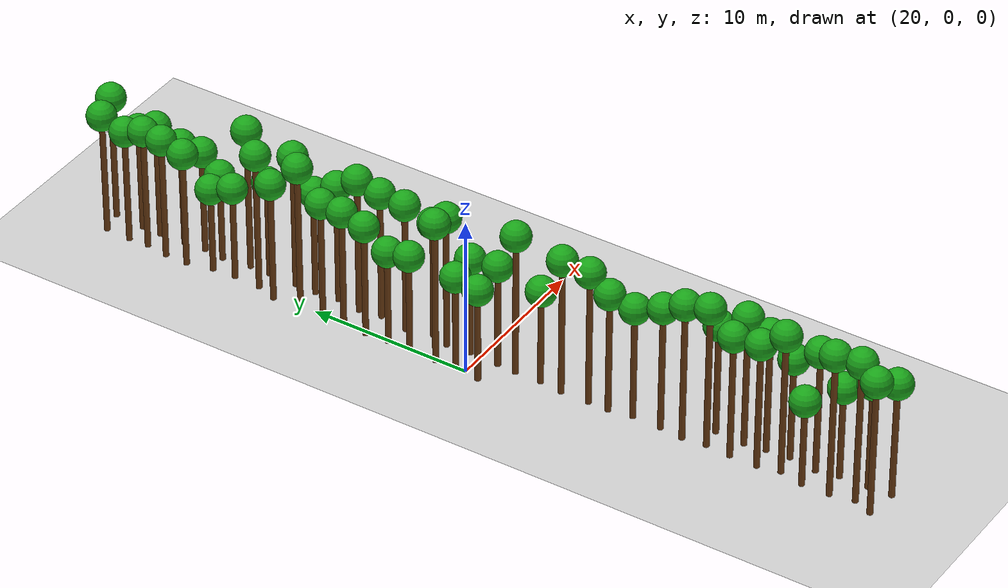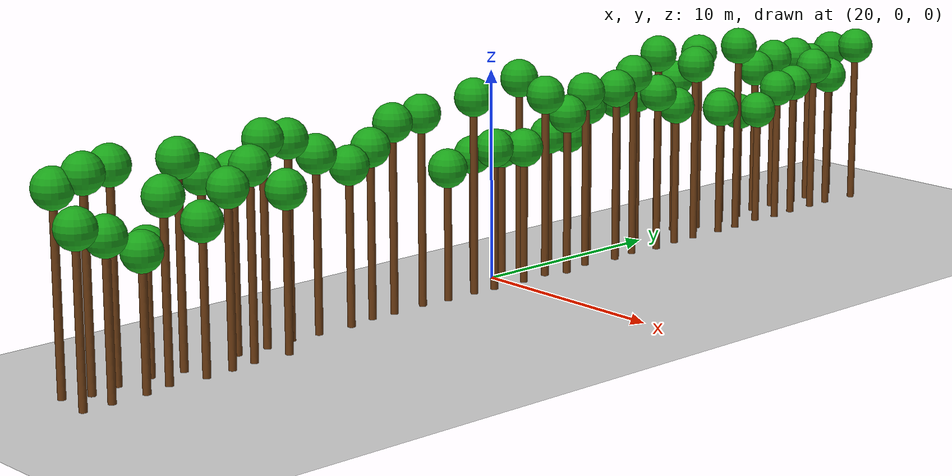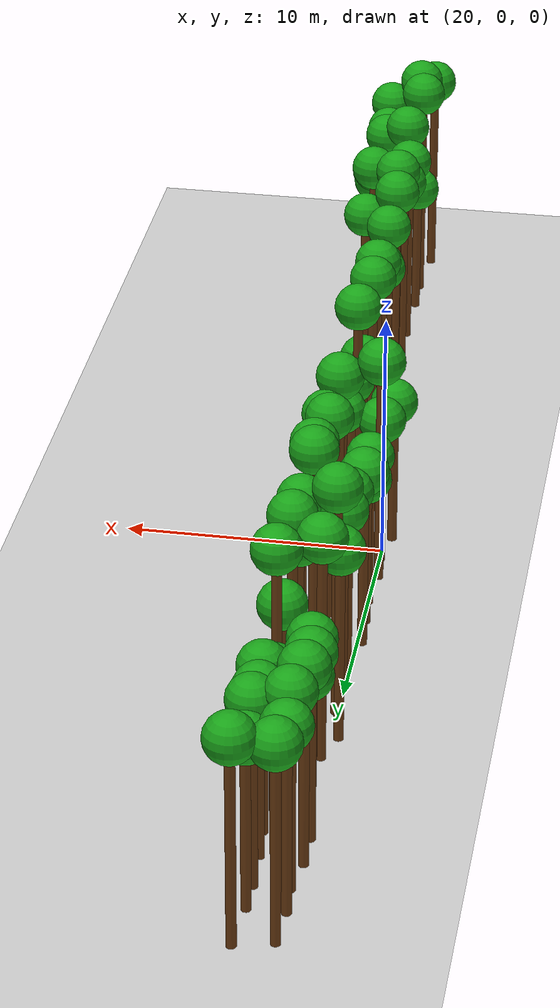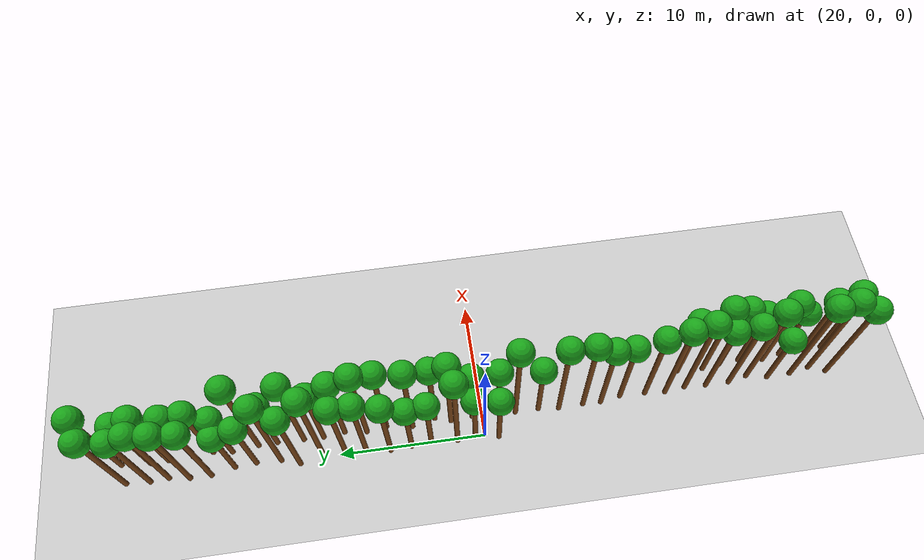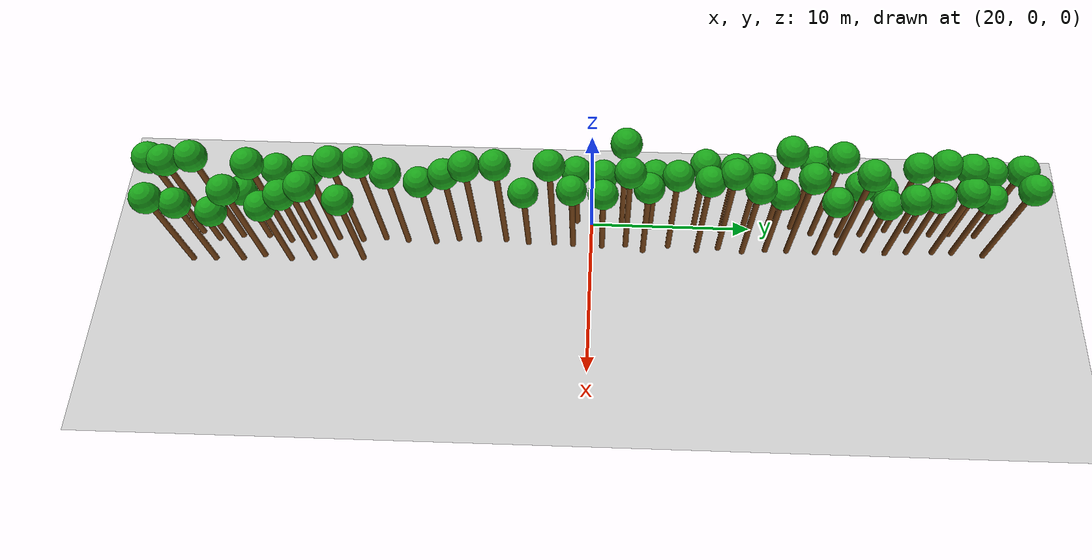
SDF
<sdf version="1.6">
 <world name="forest_world">
  <include><uri>model://sun</uri></include>
  <include><uri>model://ground_plane</uri></include>
  <model name="tree_1023">
   <static>true</static>
   <link name="trunk">
    <collision name="collision">
     <pose>19.75 -0.95 2.82 0 0 0</pose>
     <geometry><cylinder><radius>0.18</radius><length>5.64</length></cylinder></geometry>
    </collision>
    <visual name="trunk_visual">
     <pose>19.75 -0.95 2.82 0 0 0</pose>
     <geometry><cylinder><radius>0.18</radius><length>5.64</length></cylinder></geometry>
     <material><ambient>0.35 0.20 0.05 1</ambient><diffuse>0.45 0.25 0.08 1</diffuse></material>
    </visual>
    <visual name="leaf_visual">
     <pose>19.75 -0.95 6.09 0 0 0</pose>
     <geometry><sphere><radius>0.9</radius></sphere></geometry>
     <material><ambient>0.05 0.45 0.05 1</ambient><diffuse>0.10 0.65 0.10 1</diffuse></material>
    </visual>
   </link>
  </model>
  <model name="tree_1024">
   <static>true</static>
   <link name="trunk">
    <collision name="collision">
     <pose>19.99 0.66 2.86 0 0 0</pose>
     <geometry><cylinder><radius>0.18</radius><length>5.72</length></cylinder></geometry>
    </collision>
    <visual name="trunk_visual">
     <pose>19.99 0.66 2.86 0 0 0</pose>
     <geometry><cylinder><radius>0.18</radius><length>5.72</length></cylinder></geometry>
     <material><ambient>0.35 0.20 0.05 1</ambient><diffuse>0.45 0.25 0.08 1</diffuse></material>
    </visual>
    <visual name="leaf_visual">
     <pose>19.99 0.66 6.17 0 0 0</pose>
     <geometry><sphere><radius>0.9</radius></sphere></geometry>
     <material><ambient>0.05 0.45 0.05 1</ambient><diffuse>0.10 0.65 0.10 1</diffuse></material>
    </visual>
   </link>
  </model>
  <model name="tree_1025">
   <static>true</static>
   <link name="trunk">
    <collision name="collision">
     <pose>19.87 1.90 4.44 0 0 0</pose>
     <geometry><cylinder><radius>0.18</radius><length>8.89</length></cylinder></geometry>
    </collision>
    <visual name="trunk_visual">
     <pose>19.87 1.90 4.44 0 0 0</pose>
     <geometry><cylinder><radius>0.18</radius><length>8.89</length></cylinder></geometry>
     <material><ambient>0.35 0.20 0.05 1</ambient><diffuse>0.45 0.25 0.08 1</diffuse></material>
    </visual>
    <visual name="leaf_visual">
     <pose>19.87 1.90 9.34 0 0 0</pose>
     <geometry><sphere><radius>0.9</radius></sphere></geometry>
     <material><ambient>0.05 0.45 0.05 1</ambient><diffuse>0.10 0.65 0.10 1</diffuse></material>
    </visual>
   </link>
  </model>
  <model name="tree_1026">
   <static>true</static>
   <link name="trunk">
    <collision name="collision">
     <pose>20.00 3.70 2.95 0 0 0</pose>
     <geometry><cylinder><radius>0.18</radius><length>5.91</length></cylinder></geometry>
    </collision>
    <visual name="trunk_visual">
     <pose>20.00 3.70 2.95 0 0 0</pose>
     <geometry><cylinder><radius>0.18</radius><length>5.91</length></cylinder></geometry>
     <material><ambient>0.35 0.20 0.05 1</ambient><diffuse>0.45 0.25 0.08 1</diffuse></material>
    </visual>
    <visual name="leaf_visual">
     <pose>20.00 3.70 6.36 0 0 0</pose>
     <geometry><sphere><radius>0.9</radius></sphere></geometry>
     <material><ambient>0.05 0.45 0.05 1</ambient><diffuse>0.10 0.65 0.10 1</diffuse></material>
    </visual>
   </link>
  </model>
  <model name="tree_1027">
   <static>true</static>
   <link name="trunk">
    <collision name="collision">
     <pose>19.91 5.06 2.86 0 0 0</pose>
     <geometry><cylinder><radius>0.18</radius><length>5.73</length></cylinder></geometry>
    </collision>
    <visual name="trunk_visual">
     <pose>19.91 5.06 2.86 0 0 0</pose>
     <geometry><cylinder><radius>0.18</radius><length>5.73</length></cylinder></geometry>
     <material><ambient>0.35 0.20 0.05 1</ambient><diffuse>0.45 0.25 0.08 1</diffuse></material>
    </visual>
    <visual name="leaf_visual">
     <pose>19.91 5.06 6.18 0 0 0</pose>
     <geometry><sphere><radius>0.9</radius></sphere></geometry>
     <material><ambient>0.05 0.45 0.05 1</ambient><diffuse>0.10 0.65 0.10 1</diffuse></material>
    </visual>
   </link>
  </model>
  <model name="tree_1028">
   <static>true</static>
   <link name="trunk">
    <collision name="collision">
     <pose>19.82 6.51 3.45 0 0 0</pose>
     <geometry><cylinder><radius>0.18</radius><length>6.90</length></cylinder></geometry>
    </collision>
    <visual name="trunk_visual">
     <pose>19.82 6.51 3.45 0 0 0</pose>
     <geometry><cylinder><radius>0.18</radius><length>6.90</length></cylinder></geometry>
     <material><ambient>0.35 0.20 0.05 1</ambient><diffuse>0.45 0.25 0.08 1</diffuse></material>
    </visual>
    <visual name="leaf_visual">
     <pose>19.82 6.51 7.35 0 0 0</pose>
     <geometry><sphere><radius>0.9</radius></sphere></geometry>
     <material><ambient>0.05 0.45 0.05 1</ambient><diffuse>0.10 0.65 0.10 1</diffuse></material>
    </visual>
   </link>
  </model>
  <model name="tree_1029">
   <static>true</static>
   <link name="trunk">
    <collision name="collision">
     <pose>20.14 8.20 3.51 0 0 0</pose>
     <geometry><cylinder><radius>0.18</radius><length>7.02</length></cylinder></geometry>
    </collision>
    <visual name="trunk_visual">
     <pose>20.14 8.20 3.51 0 0 0</pose>
     <geometry><cylinder><radius>0.18</radius><length>7.02</length></cylinder></geometry>
     <material><ambient>0.35 0.20 0.05 1</ambient><diffuse>0.45 0.25 0.08 1</diffuse></material>
    </visual>
    <visual name="leaf_visual">
     <pose>20.14 8.20 7.47 0 0 0</pose>
     <geometry><sphere><radius>0.9</radius></sphere></geometry>
     <material><ambient>0.05 0.45 0.05 1</ambient><diffuse>0.10 0.65 0.10 1</diffuse></material>
    </visual>
   </link>
  </model>
  <model name="tree_1030">
   <static>true</static>
   <link name="trunk">
    <collision name="collision">
     <pose>20.10 9.58 3.55 0 0 0</pose>
     <geometry><cylinder><radius>0.18</radius><length>7.09</length></cylinder></geometry>
    </collision>
    <visual name="trunk_visual">
     <pose>20.10 9.58 3.55 0 0 0</pose>
     <geometry><cylinder><radius>0.18</radius><length>7.09</length></cylinder></geometry>
     <material><ambient>0.35 0.20 0.05 1</ambient><diffuse>0.45 0.25 0.08 1</diffuse></material>
    </visual>
    <visual name="leaf_visual">
     <pose>20.10 9.58 7.54 0 0 0</pose>
     <geometry><sphere><radius>0.9</radius></sphere></geometry>
     <material><ambient>0.05 0.45 0.05 1</ambient><diffuse>0.10 0.65 0.10 1</diffuse></material>
    </visual>
   </link>
  </model>
  <model name="tree_1031">
   <static>true</static>
   <link name="trunk">
    <collision name="collision">
     <pose>20.10 11.10 4.44 0 0 0</pose>
     <geometry><cylinder><radius>0.18</radius><length>8.89</length></cylinder></geometry>
    </collision>
    <visual name="trunk_visual">
     <pose>20.10 11.10 4.44 0 0 0</pose>
     <geometry><cylinder><radius>0.18</radius><length>8.89</length></cylinder></geometry>
     <material><ambient>0.35 0.20 0.05 1</ambient><diffuse>0.45 0.25 0.08 1</diffuse></material>
    </visual>
    <visual name="leaf_visual">
     <pose>20.10 11.10 9.34 0 0 0</pose>
     <geometry><sphere><radius>0.9</radius></sphere></geometry>
     <material><ambient>0.05 0.45 0.05 1</ambient><diffuse>0.10 0.65 0.10 1</diffuse></material>
    </visual>
   </link>
  </model>
  <model name="tree_1032">
   <static>true</static>
   <link name="trunk">
    <collision name="collision">
     <pose>19.75 12.69 3.69 0 0 0</pose>
     <geometry><cylinder><radius>0.18</radius><length>7.38</length></cylinder></geometry>
    </collision>
    <visual name="trunk_visual">
     <pose>19.75 12.69 3.69 0 0 0</pose>
     <geometry><cylinder><radius>0.18</radius><length>7.38</length></cylinder></geometry>
     <material><ambient>0.35 0.20 0.05 1</ambient><diffuse>0.45 0.25 0.08 1</diffuse></material>
    </visual>
    <visual name="leaf_visual">
     <pose>19.75 12.69 7.83 0 0 0</pose>
     <geometry><sphere><radius>0.9</radius></sphere></geometry>
     <material><ambient>0.05 0.45 0.05 1</ambient><diffuse>0.10 0.65 0.10 1</diffuse></material>
    </visual>
   </link>
  </model>
  <model name="tree_1033">
   <static>true</static>
   <link name="trunk">
    <collision name="collision">
     <pose>20.18 13.96 4.29 0 0 0</pose>
     <geometry><cylinder><radius>0.18</radius><length>8.59</length></cylinder></geometry>
    </collision>
    <visual name="trunk_visual">
     <pose>20.18 13.96 4.29 0 0 0</pose>
     <geometry><cylinder><radius>0.18</radius><length>8.59</length></cylinder></geometry>
     <material><ambient>0.35 0.20 0.05 1</ambient><diffuse>0.45 0.25 0.08 1</diffuse></material>
    </visual>
    <visual name="leaf_visual">
     <pose>20.18 13.96 9.04 0 0 0</pose>
     <geometry><sphere><radius>0.9</radius></sphere></geometry>
     <material><ambient>0.05 0.45 0.05 1</ambient><diffuse>0.10 0.65 0.10 1</diffuse></material>
    </visual>
   </link>
  </model>
  <model name="tree_1034">
   <static>true</static>
   <link name="trunk">
    <collision name="collision">
     <pose>20.24 15.65 2.83 0 0 0</pose>
     <geometry><cylinder><radius>0.18</radius><length>5.66</length></cylinder></geometry>
    </collision>
    <visual name="trunk_visual">
     <pose>20.24 15.65 2.83 0 0 0</pose>
     <geometry><cylinder><radius>0.18</radius><length>5.66</length></cylinder></geometry>
     <material><ambient>0.35 0.20 0.05 1</ambient><diffuse>0.45 0.25 0.08 1</diffuse></material>
    </visual>
    <visual name="leaf_visual">
     <pose>20.24 15.65 6.11 0 0 0</pose>
     <geometry><sphere><radius>0.9</radius></sphere></geometry>
     <material><ambient>0.05 0.45 0.05 1</ambient><diffuse>0.10 0.65 0.10 1</diffuse></material>
    </visual>
   </link>
  </model>
  <model name="tree_1035">
   <static>true</static>
   <link name="trunk">
    <collision name="collision">
     <pose>20.14 17.09 2.56 0 0 0</pose>
     <geometry><cylinder><radius>0.18</radius><length>5.11</length></cylinder></geometry>
    </collision>
    <visual name="trunk_visual">
     <pose>20.14 17.09 2.56 0 0 0</pose>
     <geometry><cylinder><radius>0.18</radius><length>5.11</length></cylinder></geometry>
     <material><ambient>0.35 0.20 0.05 1</ambient><diffuse>0.45 0.25 0.08 1</diffuse></material>
    </visual>
    <visual name="leaf_visual">
     <pose>20.14 17.09 5.56 0 0 0</pose>
     <geometry><sphere><radius>0.9</radius></sphere></geometry>
     <material><ambient>0.05 0.45 0.05 1</ambient><diffuse>0.10 0.65 0.10 1</diffuse></material>
    </visual>
   </link>
  </model>
  <model name="tree_1036">
   <static>true</static>
   <link name="trunk">
    <collision name="collision">
     <pose>19.79 18.68 3.55 0 0 0</pose>
     <geometry><cylinder><radius>0.18</radius><length>7.10</length></cylinder></geometry>
    </collision>
    <visual name="trunk_visual">
     <pose>19.79 18.68 3.55 0 0 0</pose>
     <geometry><cylinder><radius>0.18</radius><length>7.10</length></cylinder></geometry>
     <material><ambient>0.35 0.20 0.05 1</ambient><diffuse>0.45 0.25 0.08 1</diffuse></material>
    </visual>
    <visual name="leaf_visual">
     <pose>19.79 18.68 7.55 0 0 0</pose>
     <geometry><sphere><radius>0.9</radius></sphere></geometry>
     <material><ambient>0.05 0.45 0.05 1</ambient><diffuse>0.10 0.65 0.10 1</diffuse></material>
    </visual>
   </link>
  </model>
  <model name="tree_1037">
   <static>true</static>
   <link name="trunk">
    <collision name="collision">
     <pose>19.79 20.11 3.75 0 0 0</pose>
     <geometry><cylinder><radius>0.18</radius><length>7.49</length></cylinder></geometry>
    </collision>
    <visual name="trunk_visual">
     <pose>19.79 20.11 3.75 0 0 0</pose>
     <geometry><cylinder><radius>0.18</radius><length>7.49</length></cylinder></geometry>
     <material><ambient>0.35 0.20 0.05 1</ambient><diffuse>0.45 0.25 0.08 1</diffuse></material>
    </visual>
    <visual name="leaf_visual">
     <pose>19.79 20.11 7.94 0 0 0</pose>
     <geometry><sphere><radius>0.9</radius></sphere></geometry>
     <material><ambient>0.05 0.45 0.05 1</ambient><diffuse>0.10 0.65 0.10 1</diffuse></material>
    </visual>
   </link>
  </model>
  <model name="tree_1038">
   <static>true</static>
   <link name="trunk">
    <collision name="collision">
     <pose>20.00 21.52 3.72 0 0 0</pose>
     <geometry><cylinder><radius>0.18</radius><length>7.45</length></cylinder></geometry>
    </collision>
    <visual name="trunk_visual">
     <pose>20.00 21.52 3.72 0 0 0</pose>
     <geometry><cylinder><radius>0.18</radius><length>7.45</length></cylinder></geometry>
     <material><ambient>0.35 0.20 0.05 1</ambient><diffuse>0.45 0.25 0.08 1</diffuse></material>
    </visual>
    <visual name="leaf_visual">
     <pose>20.00 21.52 7.90 0 0 0</pose>
     <geometry><sphere><radius>0.9</radius></sphere></geometry>
     <material><ambient>0.05 0.45 0.05 1</ambient><diffuse>0.10 0.65 0.10 1</diffuse></material>
    </visual>
   </link>
  </model>
  <model name="tree_1039">
   <static>true</static>
   <link name="trunk">
    <collision name="collision">
     <pose>19.92 22.76 3.50 0 0 0</pose>
     <geometry><cylinder><radius>0.18</radius><length>7.00</length></cylinder></geometry>
    </collision>
    <visual name="trunk_visual">
     <pose>19.92 22.76 3.50 0 0 0</pose>
     <geometry><cylinder><radius>0.18</radius><length>7.00</length></cylinder></geometry>
     <material><ambient>0.35 0.20 0.05 1</ambient><diffuse>0.45 0.25 0.08 1</diffuse></material>
    </visual>
    <visual name="leaf_visual">
     <pose>19.92 22.76 7.45 0 0 0</pose>
     <geometry><sphere><radius>0.9</radius></sphere></geometry>
     <material><ambient>0.05 0.45 0.05 1</ambient><diffuse>0.10 0.65 0.10 1</diffuse></material>
    </visual>
   </link>
  </model>
  <model name="tree_1040">
   <static>true</static>
   <link name="trunk">
    <collision name="collision">
     <pose>20.01 24.38 3.71 0 0 0</pose>
     <geometry><cylinder><radius>0.18</radius><length>7.42</length></cylinder></geometry>
    </collision>
    <visual name="trunk_visual">
     <pose>20.01 24.38 3.71 0 0 0</pose>
     <geometry><cylinder><radius>0.18</radius><length>7.42</length></cylinder></geometry>
     <material><ambient>0.35 0.20 0.05 1</ambient><diffuse>0.45 0.25 0.08 1</diffuse></material>
    </visual>
    <visual name="leaf_visual">
     <pose>20.01 24.38 7.87 0 0 0</pose>
     <geometry><sphere><radius>0.9</radius></sphere></geometry>
     <material><ambient>0.05 0.45 0.05 1</ambient><diffuse>0.10 0.65 0.10 1</diffuse></material>
    </visual>
   </link>
  </model>
  <model name="tree_1041">
   <static>true</static>
   <link name="trunk">
    <collision name="collision">
     <pose>21.30 -24.79 4.17 0 0 0</pose>
     <geometry><cylinder><radius>0.18</radius><length>8.34</length></cylinder></geometry>
    </collision>
    <visual name="trunk_visual">
     <pose>21.30 -24.79 4.17 0 0 0</pose>
     <geometry><cylinder><radius>0.18</radius><length>8.34</length></cylinder></geometry>
     <material><ambient>0.35 0.20 0.05 1</ambient><diffuse>0.45 0.25 0.08 1</diffuse></material>
    </visual>
    <visual name="leaf_visual">
     <pose>21.30 -24.79 8.79 0 0 0</pose>
     <geometry><sphere><radius>0.9</radius></sphere></geometry>
     <material><ambient>0.05 0.45 0.05 1</ambient><diffuse>0.10 0.65 0.10 1</diffuse></material>
    </visual>
   </link>
  </model>
  <model name="tree_1042">
   <static>true</static>
   <link name="trunk">
    <collision name="collision">
     <pose>21.75 -23.64 4.42 0 0 0</pose>
     <geometry><cylinder><radius>0.18</radius><length>8.84</length></cylinder></geometry>
    </collision>
    <visual name="trunk_visual">
     <pose>21.75 -23.64 4.42 0 0 0</pose>
     <geometry><cylinder><radius>0.18</radius><length>8.84</length></cylinder></geometry>
     <material><ambient>0.35 0.20 0.05 1</ambient><diffuse>0.45 0.25 0.08 1</diffuse></material>
    </visual>
    <visual name="leaf_visual">
     <pose>21.75 -23.64 9.29 0 0 0</pose>
     <geometry><sphere><radius>0.9</radius></sphere></geometry>
     <material><ambient>0.05 0.45 0.05 1</ambient><diffuse>0.10 0.65 0.10 1</diffuse></material>
    </visual>
   </link>
  </model>
  <model name="tree_1043">
   <static>true</static>
   <link name="trunk">
    <collision name="collision">
     <pose>21.48 -22.19 4.45 0 0 0</pose>
     <geometry><cylinder><radius>0.18</radius><length>8.89</length></cylinder></geometry>
    </collision>
    <visual name="trunk_visual">
     <pose>21.48 -22.19 4.45 0 0 0</pose>
     <geometry><cylinder><radius>0.18</radius><length>8.89</length></cylinder></geometry>
     <material><ambient>0.35 0.20 0.05 1</ambient><diffuse>0.45 0.25 0.08 1</diffuse></material>
    </visual>
    <visual name="leaf_visual">
     <pose>21.48 -22.19 9.34 0 0 0</pose>
     <geometry><sphere><radius>0.9</radius></sphere></geometry>
     <material><ambient>0.05 0.45 0.05 1</ambient><diffuse>0.10 0.65 0.10 1</diffuse></material>
    </visual>
   </link>
  </model>
  <model name="tree_1044">
   <static>true</static>
   <link name="trunk">
    <collision name="collision">
     <pose>21.44 -20.51 2.59 0 0 0</pose>
     <geometry><cylinder><radius>0.18</radius><length>5.19</length></cylinder></geometry>
    </collision>
    <visual name="trunk_visual">
     <pose>21.44 -20.51 2.59 0 0 0</pose>
     <geometry><cylinder><radius>0.18</radius><length>5.19</length></cylinder></geometry>
     <material><ambient>0.35 0.20 0.05 1</ambient><diffuse>0.45 0.25 0.08 1</diffuse></material>
    </visual>
    <visual name="leaf_visual">
     <pose>21.44 -20.51 5.64 0 0 0</pose>
     <geometry><sphere><radius>0.9</radius></sphere></geometry>
     <material><ambient>0.05 0.45 0.05 1</ambient><diffuse>0.10 0.65 0.10 1</diffuse></material>
    </visual>
   </link>
  </model>
  <model name="tree_1045">
   <static>true</static>
   <link name="trunk">
    <collision name="collision">
     <pose>21.74 -19.05 4.37 0 0 0</pose>
     <geometry><cylinder><radius>0.18</radius><length>8.73</length></cylinder></geometry>
    </collision>
    <visual name="trunk_visual">
     <pose>21.74 -19.05 4.37 0 0 0</pose>
     <geometry><cylinder><radius>0.18</radius><length>8.73</length></cylinder></geometry>
     <material><ambient>0.35 0.20 0.05 1</ambient><diffuse>0.45 0.25 0.08 1</diffuse></material>
    </visual>
    <visual name="leaf_visual">
     <pose>21.74 -19.05 9.18 0 0 0</pose>
     <geometry><sphere><radius>0.9</radius></sphere></geometry>
     <material><ambient>0.05 0.45 0.05 1</ambient><diffuse>0.10 0.65 0.10 1</diffuse></material>
    </visual>
   </link>
  </model>
  <model name="tree_1046">
   <static>true</static>
   <link name="trunk">
    <collision name="collision">
     <pose>21.46 -17.70 3.89 0 0 0</pose>
     <geometry><cylinder><radius>0.18</radius><length>7.78</length></cylinder></geometry>
    </collision>
    <visual name="trunk_visual">
     <pose>21.46 -17.70 3.89 0 0 0</pose>
     <geometry><cylinder><radius>0.18</radius><length>7.78</length></cylinder></geometry>
     <material><ambient>0.35 0.20 0.05 1</ambient><diffuse>0.45 0.25 0.08 1</diffuse></material>
    </visual>
    <visual name="leaf_visual">
     <pose>21.46 -17.70 8.23 0 0 0</pose>
     <geometry><sphere><radius>0.9</radius></sphere></geometry>
     <material><ambient>0.05 0.45 0.05 1</ambient><diffuse>0.10 0.65 0.10 1</diffuse></material>
    </visual>
   </link>
  </model>
  <model name="tree_1047">
   <static>true</static>
   <link name="trunk">
    <collision name="collision">
     <pose>21.45 -16.03 3.81 0 0 0</pose>
     <geometry><cylinder><radius>0.18</radius><length>7.62</length></cylinder></geometry>
    </collision>
    <visual name="trunk_visual">
     <pose>21.45 -16.03 3.81 0 0 0</pose>
     <geometry><cylinder><radius>0.18</radius><length>7.62</length></cylinder></geometry>
     <material><ambient>0.35 0.20 0.05 1</ambient><diffuse>0.45 0.25 0.08 1</diffuse></material>
    </visual>
    <visual name="leaf_visual">
     <pose>21.45 -16.03 8.07 0 0 0</pose>
     <geometry><sphere><radius>0.9</radius></sphere></geometry>
     <material><ambient>0.05 0.45 0.05 1</ambient><diffuse>0.10 0.65 0.10 1</diffuse></material>
    </visual>
   </link>
  </model>
  <model name="tree_1048">
   <static>true</static>
   <link name="trunk">
    <collision name="collision">
     <pose>21.53 -14.51 4.40 0 0 0</pose>
     <geometry><cylinder><radius>0.18</radius><length>8.80</length></cylinder></geometry>
    </collision>
    <visual name="trunk_visual">
     <pose>21.53 -14.51 4.40 0 0 0</pose>
     <geometry><cylinder><radius>0.18</radius><length>8.80</length></cylinder></geometry>
     <material><ambient>0.35 0.20 0.05 1</ambient><diffuse>0.45 0.25 0.08 1</diffuse></material>
    </visual>
    <visual name="leaf_visual">
     <pose>21.53 -14.51 9.25 0 0 0</pose>
     <geometry><sphere><radius>0.9</radius></sphere></geometry>
     <material><ambient>0.05 0.45 0.05 1</ambient><diffuse>0.10 0.65 0.10 1</diffuse></material>
    </visual>
   </link>
  </model>
  <model name="tree_1049">
   <static>true</static>
   <link name="trunk">
    <collision name="collision">
     <pose>21.37 -13.06 4.27 0 0 0</pose>
     <geometry><cylinder><radius>0.18</radius><length>8.55</length></cylinder></geometry>
    </collision>
    <visual name="trunk_visual">
     <pose>21.37 -13.06 4.27 0 0 0</pose>
     <geometry><cylinder><radius>0.18</radius><length>8.55</length></cylinder></geometry>
     <material><ambient>0.35 0.20 0.05 1</ambient><diffuse>0.45 0.25 0.08 1</diffuse></material>
    </visual>
    <visual name="leaf_visual">
     <pose>21.37 -13.06 9.00 0 0 0</pose>
     <geometry><sphere><radius>0.9</radius></sphere></geometry>
     <material><ambient>0.05 0.45 0.05 1</ambient><diffuse>0.10 0.65 0.10 1</diffuse></material>
    </visual>
   </link>
  </model>
  <model name="tree_1050">
   <static>true</static>
   <link name="trunk">
    <collision name="collision">
     <pose>21.49 -11.63 3.84 0 0 0</pose>
     <geometry><cylinder><radius>0.18</radius><length>7.67</length></cylinder></geometry>
    </collision>
    <visual name="trunk_visual">
     <pose>21.49 -11.63 3.84 0 0 0</pose>
     <geometry><cylinder><radius>0.18</radius><length>7.67</length></cylinder></geometry>
     <material><ambient>0.35 0.20 0.05 1</ambient><diffuse>0.45 0.25 0.08 1</diffuse></material>
    </visual>
    <visual name="leaf_visual">
     <pose>21.49 -11.63 8.12 0 0 0</pose>
     <geometry><sphere><radius>0.9</radius></sphere></geometry>
     <material><ambient>0.05 0.45 0.05 1</ambient><diffuse>0.10 0.65 0.10 1</diffuse></material>
    </visual>
   </link>
  </model>
  <model name="tree_1051">
   <static>true</static>
   <link name="trunk">
    <collision name="collision">
     <pose>21.53 -9.84 3.44 0 0 0</pose>
     <geometry><cylinder><radius>0.18</radius><length>6.89</length></cylinder></geometry>
    </collision>
    <visual name="trunk_visual">
     <pose>21.53 -9.84 3.44 0 0 0</pose>
     <geometry><cylinder><radius>0.18</radius><length>6.89</length></cylinder></geometry>
     <material><ambient>0.35 0.20 0.05 1</ambient><diffuse>0.45 0.25 0.08 1</diffuse></material>
    </visual>
    <visual name="leaf_visual">
     <pose>21.53 -9.84 7.34 0 0 0</pose>
     <geometry><sphere><radius>0.9</radius></sphere></geometry>
     <material><ambient>0.05 0.45 0.05 1</ambient><diffuse>0.10 0.65 0.10 1</diffuse></material>
    </visual>
   </link>
  </model>
  <model name="tree_1052">
   <static>true</static>
   <link name="trunk">
    <collision name="collision">
     <pose>21.28 -8.41 3.71 0 0 0</pose>
     <geometry><cylinder><radius>0.18</radius><length>7.42</length></cylinder></geometry>
    </collision>
    <visual name="trunk_visual">
     <pose>21.28 -8.41 3.71 0 0 0</pose>
     <geometry><cylinder><radius>0.18</radius><length>7.42</length></cylinder></geometry>
     <material><ambient>0.35 0.20 0.05 1</ambient><diffuse>0.45 0.25 0.08 1</diffuse></material>
    </visual>
    <visual name="leaf_visual">
     <pose>21.28 -8.41 7.87 0 0 0</pose>
     <geometry><sphere><radius>0.9</radius></sphere></geometry>
     <material><ambient>0.05 0.45 0.05 1</ambient><diffuse>0.10 0.65 0.10 1</diffuse></material>
    </visual>
   </link>
  </model>
  <model name="tree_1053">
   <static>true</static>
   <link name="trunk">
    <collision name="collision">
     <pose>21.30 -7.14 4.17 0 0 0</pose>
     <geometry><cylinder><radius>0.18</radius><length>8.35</length></cylinder></geometry>
    </collision>
    <visual name="trunk_visual">
     <pose>21.30 -7.14 4.17 0 0 0</pose>
     <geometry><cylinder><radius>0.18</radius><length>8.35</length></cylinder></geometry>
     <material><ambient>0.35 0.20 0.05 1</ambient><diffuse>0.45 0.25 0.08 1</diffuse></material>
    </visual>
    <visual name="leaf_visual">
     <pose>21.30 -7.14 8.80 0 0 0</pose>
     <geometry><sphere><radius>0.9</radius></sphere></geometry>
     <material><ambient>0.05 0.45 0.05 1</ambient><diffuse>0.10 0.65 0.10 1</diffuse></material>
    </visual>
   </link>
  </model>
  <model name="tree_1054">
   <static>true</static>
   <link name="trunk">
    <collision name="collision">
     <pose>21.25 -5.41 4.25 0 0 0</pose>
     <geometry><cylinder><radius>0.18</radius><length>8.49</length></cylinder></geometry>
    </collision>
    <visual name="trunk_visual">
     <pose>21.25 -5.41 4.25 0 0 0</pose>
     <geometry><cylinder><radius>0.18</radius><length>8.49</length></cylinder></geometry>
     <material><ambient>0.35 0.20 0.05 1</ambient><diffuse>0.45 0.25 0.08 1</diffuse></material>
    </visual>
    <visual name="leaf_visual">
     <pose>21.25 -5.41 8.94 0 0 0</pose>
     <geometry><sphere><radius>0.9</radius></sphere></geometry>
     <material><ambient>0.05 0.45 0.05 1</ambient><diffuse>0.10 0.65 0.10 1</diffuse></material>
    </visual>
   </link>
  </model>
  <model name="tree_1055">
   <static>true</static>
   <link name="trunk">
    <collision name="collision">
     <pose>21.40 -3.98 2.89 0 0 0</pose>
     <geometry><cylinder><radius>0.18</radius><length>5.77</length></cylinder></geometry>
    </collision>
    <visual name="trunk_visual">
     <pose>21.40 -3.98 2.89 0 0 0</pose>
     <geometry><cylinder><radius>0.18</radius><length>5.77</length></cylinder></geometry>
     <material><ambient>0.35 0.20 0.05 1</ambient><diffuse>0.45 0.25 0.08 1</diffuse></material>
    </visual>
    <visual name="leaf_visual">
     <pose>21.40 -3.98 6.22 0 0 0</pose>
     <geometry><sphere><radius>0.9</radius></sphere></geometry>
     <material><ambient>0.05 0.45 0.05 1</ambient><diffuse>0.10 0.65 0.10 1</diffuse></material>
    </visual>
   </link>
  </model>
  <model name="tree_1056">
   <static>true</static>
   <link name="trunk">
    <collision name="collision">
     <pose>21.38 -2.36 4.41 0 0 0</pose>
     <geometry><cylinder><radius>0.18</radius><length>8.82</length></cylinder></geometry>
    </collision>
    <visual name="trunk_visual">
     <pose>21.38 -2.36 4.41 0 0 0</pose>
     <geometry><cylinder><radius>0.18</radius><length>8.82</length></cylinder></geometry>
     <material><ambient>0.35 0.20 0.05 1</ambient><diffuse>0.45 0.25 0.08 1</diffuse></material>
    </visual>
    <visual name="leaf_visual">
     <pose>21.38 -2.36 9.27 0 0 0</pose>
     <geometry><sphere><radius>0.9</radius></sphere></geometry>
     <material><ambient>0.05 0.45 0.05 1</ambient><diffuse>0.10 0.65 0.10 1</diffuse></material>
    </visual>
   </link>
  </model>
  <model name="tree_1057">
   <static>true</static>
   <link name="trunk">
    <collision name="collision">
     <pose>21.44 -1.16 3.14 0 0 0</pose>
     <geometry><cylinder><radius>0.18</radius><length>6.28</length></cylinder></geometry>
    </collision>
    <visual name="trunk_visual">
     <pose>21.44 -1.16 3.14 0 0 0</pose>
     <geometry><cylinder><radius>0.18</radius><length>6.28</length></cylinder></geometry>
     <material><ambient>0.35 0.20 0.05 1</ambient><diffuse>0.45 0.25 0.08 1</diffuse></material>
    </visual>
    <visual name="leaf_visual">
     <pose>21.44 -1.16 6.73 0 0 0</pose>
     <geometry><sphere><radius>0.9</radius></sphere></geometry>
     <material><ambient>0.05 0.45 0.05 1</ambient><diffuse>0.10 0.65 0.10 1</diffuse></material>
    </visual>
   </link>
  </model>
  <model name="tree_1058">
   <static>true</static>
   <link name="trunk">
    <collision name="collision">
     <pose>21.50 0.67 3.01 0 0 0</pose>
     <geometry><cylinder><radius>0.18</radius><length>6.02</length></cylinder></geometry>
    </collision>
    <visual name="trunk_visual">
     <pose>21.50 0.67 3.01 0 0 0</pose>
     <geometry><cylinder><radius>0.18</radius><length>6.02</length></cylinder></geometry>
     <material><ambient>0.35 0.20 0.05 1</ambient><diffuse>0.45 0.25 0.08 1</diffuse></material>
    </visual>
    <visual name="leaf_visual">
     <pose>21.50 0.67 6.47 0 0 0</pose>
     <geometry><sphere><radius>0.9</radius></sphere></geometry>
     <material><ambient>0.05 0.45 0.05 1</ambient><diffuse>0.10 0.65 0.10 1</diffuse></material>
    </visual>
   </link>
  </model>
  <model name="tree_1059">
   <static>true</static>
   <link name="trunk">
    <collision name="collision">
     <pose>21.38 2.16 4.15 0 0 0</pose>
     <geometry><cylinder><radius>0.18</radius><length>8.29</length></cylinder></geometry>
    </collision>
    <visual name="trunk_visual">
     <pose>21.38 2.16 4.15 0 0 0</pose>
     <geometry><cylinder><radius>0.18</radius><length>8.29</length></cylinder></geometry>
     <material><ambient>0.35 0.20 0.05 1</ambient><diffuse>0.45 0.25 0.08 1</diffuse></material>
    </visual>
    <visual name="leaf_visual">
     <pose>21.38 2.16 8.74 0 0 0</pose>
     <geometry><sphere><radius>0.9</radius></sphere></geometry>
     <material><ambient>0.05 0.45 0.05 1</ambient><diffuse>0.10 0.65 0.10 1</diffuse></material>
    </visual>
   </link>
  </model>
  <model name="tree_1060">
   <static>true</static>
   <link name="trunk">
    <collision name="collision">
     <pose>21.73 3.26 3.64 0 0 0</pose>
     <geometry><cylinder><radius>0.18</radius><length>7.28</length></cylinder></geometry>
    </collision>
    <visual name="trunk_visual">
     <pose>21.73 3.26 3.64 0 0 0</pose>
     <geometry><cylinder><radius>0.18</radius><length>7.28</length></cylinder></geometry>
     <material><ambient>0.35 0.20 0.05 1</ambient><diffuse>0.45 0.25 0.08 1</diffuse></material>
    </visual>
    <visual name="leaf_visual">
     <pose>21.73 3.26 7.73 0 0 0</pose>
     <geometry><sphere><radius>0.9</radius></sphere></geometry>
     <material><ambient>0.05 0.45 0.05 1</ambient><diffuse>0.10 0.65 0.10 1</diffuse></material>
    </visual>
   </link>
  </model>
  <model name="tree_1061">
   <static>true</static>
   <link name="trunk">
    <collision name="collision">
     <pose>21.35 4.85 4.03 0 0 0</pose>
     <geometry><cylinder><radius>0.18</radius><length>8.06</length></cylinder></geometry>
    </collision>
    <visual name="trunk_visual">
     <pose>21.35 4.85 4.03 0 0 0</pose>
     <geometry><cylinder><radius>0.18</radius><length>8.06</length></cylinder></geometry>
     <material><ambient>0.35 0.20 0.05 1</ambient><diffuse>0.45 0.25 0.08 1</diffuse></material>
    </visual>
    <visual name="leaf_visual">
     <pose>21.35 4.85 8.51 0 0 0</pose>
     <geometry><sphere><radius>0.9</radius></sphere></geometry>
     <material><ambient>0.05 0.45 0.05 1</ambient><diffuse>0.10 0.65 0.10 1</diffuse></material>
    </visual>
   </link>
  </model>
  <model name="tree_1062">
   <static>true</static>
   <link name="trunk">
    <collision name="collision">
     <pose>21.61 6.65 4.00 0 0 0</pose>
     <geometry><cylinder><radius>0.18</radius><length>8.00</length></cylinder></geometry>
    </collision>
    <visual name="trunk_visual">
     <pose>21.61 6.65 4.00 0 0 0</pose>
     <geometry><cylinder><radius>0.18</radius><length>8.00</length></cylinder></geometry>
     <material><ambient>0.35 0.20 0.05 1</ambient><diffuse>0.45 0.25 0.08 1</diffuse></material>
    </visual>
    <visual name="leaf_visual">
     <pose>21.61 6.65 8.45 0 0 0</pose>
     <geometry><sphere><radius>0.9</radius></sphere></geometry>
     <material><ambient>0.05 0.45 0.05 1</ambient><diffuse>0.10 0.65 0.10 1</diffuse></material>
    </visual>
   </link>
  </model>
  <model name="tree_1063">
   <static>true</static>
   <link name="trunk">
    <collision name="collision">
     <pose>21.41 8.02 4.25 0 0 0</pose>
     <geometry><cylinder><radius>0.18</radius><length>8.50</length></cylinder></geometry>
    </collision>
    <visual name="trunk_visual">
     <pose>21.41 8.02 4.25 0 0 0</pose>
     <geometry><cylinder><radius>0.18</radius><length>8.50</length></cylinder></geometry>
     <material><ambient>0.35 0.20 0.05 1</ambient><diffuse>0.45 0.25 0.08 1</diffuse></material>
    </visual>
    <visual name="leaf_visual">
     <pose>21.41 8.02 8.95 0 0 0</pose>
     <geometry><sphere><radius>0.9</radius></sphere></geometry>
     <material><ambient>0.05 0.45 0.05 1</ambient><diffuse>0.10 0.65 0.10 1</diffuse></material>
    </visual>
   </link>
  </model>
  <model name="tree_1064">
   <static>true</static>
   <link name="trunk">
    <collision name="collision">
     <pose>21.61 9.54 3.68 0 0 0</pose>
     <geometry><cylinder><radius>0.18</radius><length>7.37</length></cylinder></geometry>
    </collision>
    <visual name="trunk_visual">
     <pose>21.61 9.54 3.68 0 0 0</pose>
     <geometry><cylinder><radius>0.18</radius><length>7.37</length></cylinder></geometry>
     <material><ambient>0.35 0.20 0.05 1</ambient><diffuse>0.45 0.25 0.08 1</diffuse></material>
    </visual>
    <visual name="leaf_visual">
     <pose>21.61 9.54 7.82 0 0 0</pose>
     <geometry><sphere><radius>0.9</radius></sphere></geometry>
     <material><ambient>0.05 0.45 0.05 1</ambient><diffuse>0.10 0.65 0.10 1</diffuse></material>
    </visual>
   </link>
  </model>
  <model name="tree_1065">
   <static>true</static>
   <link name="trunk">
    <collision name="collision">
     <pose>21.45 11.00 3.26 0 0 0</pose>
     <geometry><cylinder><radius>0.18</radius><length>6.52</length></cylinder></geometry>
    </collision>
    <visual name="trunk_visual">
     <pose>21.45 11.00 3.26 0 0 0</pose>
     <geometry><cylinder><radius>0.18</radius><length>6.52</length></cylinder></geometry>
     <material><ambient>0.35 0.20 0.05 1</ambient><diffuse>0.45 0.25 0.08 1</diffuse></material>
    </visual>
    <visual name="leaf_visual">
     <pose>21.45 11.00 6.97 0 0 0</pose>
     <geometry><sphere><radius>0.9</radius></sphere></geometry>
     <material><ambient>0.05 0.45 0.05 1</ambient><diffuse>0.10 0.65 0.10 1</diffuse></material>
    </visual>
   </link>
  </model>
  <model name="tree_1066">
   <static>true</static>
   <link name="trunk">
    <collision name="collision">
     <pose>21.47 12.35 4.20 0 0 0</pose>
     <geometry><cylinder><radius>0.18</radius><length>8.39</length></cylinder></geometry>
    </collision>
    <visual name="trunk_visual">
     <pose>21.47 12.35 4.20 0 0 0</pose>
     <geometry><cylinder><radius>0.18</radius><length>8.39</length></cylinder></geometry>
     <material><ambient>0.35 0.20 0.05 1</ambient><diffuse>0.45 0.25 0.08 1</diffuse></material>
    </visual>
    <visual name="leaf_visual">
     <pose>21.47 12.35 8.84 0 0 0</pose>
     <geometry><sphere><radius>0.9</radius></sphere></geometry>
     <material><ambient>0.05 0.45 0.05 1</ambient><diffuse>0.10 0.65 0.10 1</diffuse></material>
    </visual>
   </link>
  </model>
  <model name="tree_1067">
   <static>true</static>
   <link name="trunk">
    <collision name="collision">
     <pose>21.51 14.17 2.96 0 0 0</pose>
     <geometry><cylinder><radius>0.18</radius><length>5.92</length></cylinder></geometry>
    </collision>
    <visual name="trunk_visual">
     <pose>21.51 14.17 2.96 0 0 0</pose>
     <geometry><cylinder><radius>0.18</radius><length>5.92</length></cylinder></geometry>
     <material><ambient>0.35 0.20 0.05 1</ambient><diffuse>0.45 0.25 0.08 1</diffuse></material>
    </visual>
    <visual name="leaf_visual">
     <pose>21.51 14.17 6.37 0 0 0</pose>
     <geometry><sphere><radius>0.9</radius></sphere></geometry>
     <material><ambient>0.05 0.45 0.05 1</ambient><diffuse>0.10 0.65 0.10 1</diffuse></material>
    </visual>
   </link>
  </model>
  <model name="tree_1068">
   <static>true</static>
   <link name="trunk">
    <collision name="collision">
     <pose>21.49 15.46 4.46 0 0 0</pose>
     <geometry><cylinder><radius>0.18</radius><length>8.92</length></cylinder></geometry>
    </collision>
    <visual name="trunk_visual">
     <pose>21.49 15.46 4.46 0 0 0</pose>
     <geometry><cylinder><radius>0.18</radius><length>8.92</length></cylinder></geometry>
     <material><ambient>0.35 0.20 0.05 1</ambient><diffuse>0.45 0.25 0.08 1</diffuse></material>
    </visual>
    <visual name="leaf_visual">
     <pose>21.49 15.46 9.37 0 0 0</pose>
     <geometry><sphere><radius>0.9</radius></sphere></geometry>
     <material><ambient>0.05 0.45 0.05 1</ambient><diffuse>0.10 0.65 0.10 1</diffuse></material>
    </visual>
   </link>
  </model>
  <model name="tree_1069">
   <static>true</static>
   <link name="trunk">
    <collision name="collision">
     <pose>21.27 17.24 2.68 0 0 0</pose>
     <geometry><cylinder><radius>0.18</radius><length>5.35</length></cylinder></geometry>
    </collision>
    <visual name="trunk_visual">
     <pose>21.27 17.24 2.68 0 0 0</pose>
     <geometry><cylinder><radius>0.18</radius><length>5.35</length></cylinder></geometry>
     <material><ambient>0.35 0.20 0.05 1</ambient><diffuse>0.45 0.25 0.08 1</diffuse></material>
    </visual>
    <visual name="leaf_visual">
     <pose>21.27 17.24 5.80 0 0 0</pose>
     <geometry><sphere><radius>0.9</radius></sphere></geometry>
     <material><ambient>0.05 0.45 0.05 1</ambient><diffuse>0.10 0.65 0.10 1</diffuse></material>
    </visual>
   </link>
  </model>
  <model name="tree_1070">
   <static>true</static>
   <link name="trunk">
    <collision name="collision">
     <pose>21.43 18.55 3.16 0 0 0</pose>
     <geometry><cylinder><radius>0.18</radius><length>6.32</length></cylinder></geometry>
    </collision>
    <visual name="trunk_visual">
     <pose>21.43 18.55 3.16 0 0 0</pose>
     <geometry><cylinder><radius>0.18</radius><length>6.32</length></cylinder></geometry>
     <material><ambient>0.35 0.20 0.05 1</ambient><diffuse>0.45 0.25 0.08 1</diffuse></material>
    </visual>
    <visual name="leaf_visual">
     <pose>21.43 18.55 6.77 0 0 0</pose>
     <geometry><sphere><radius>0.9</radius></sphere></geometry>
     <material><ambient>0.05 0.45 0.05 1</ambient><diffuse>0.10 0.65 0.10 1</diffuse></material>
    </visual>
   </link>
  </model>
  <model name="tree_1071">
   <static>true</static>
   <link name="trunk">
    <collision name="collision">
     <pose>21.32 19.91 3.20 0 0 0</pose>
     <geometry><cylinder><radius>0.18</radius><length>6.40</length></cylinder></geometry>
    </collision>
    <visual name="trunk_visual">
     <pose>21.32 19.91 3.20 0 0 0</pose>
     <geometry><cylinder><radius>0.18</radius><length>6.40</length></cylinder></geometry>
     <material><ambient>0.35 0.20 0.05 1</ambient><diffuse>0.45 0.25 0.08 1</diffuse></material>
    </visual>
    <visual name="leaf_visual">
     <pose>21.32 19.91 6.85 0 0 0</pose>
     <geometry><sphere><radius>0.9</radius></sphere></geometry>
     <material><ambient>0.05 0.45 0.05 1</ambient><diffuse>0.10 0.65 0.10 1</diffuse></material>
    </visual>
   </link>
  </model>
  <model name="tree_1072">
   <static>true</static>
   <link name="trunk">
    <collision name="collision">
     <pose>21.26 21.55 3.52 0 0 0</pose>
     <geometry><cylinder><radius>0.18</radius><length>7.04</length></cylinder></geometry>
    </collision>
    <visual name="trunk_visual">
     <pose>21.26 21.55 3.52 0 0 0</pose>
     <geometry><cylinder><radius>0.18</radius><length>7.04</length></cylinder></geometry>
     <material><ambient>0.35 0.20 0.05 1</ambient><diffuse>0.45 0.25 0.08 1</diffuse></material>
    </visual>
    <visual name="leaf_visual">
     <pose>21.26 21.55 7.49 0 0 0</pose>
     <geometry><sphere><radius>0.9</radius></sphere></geometry>
     <material><ambient>0.05 0.45 0.05 1</ambient><diffuse>0.10 0.65 0.10 1</diffuse></material>
    </visual>
   </link>
  </model>
  <model name="tree_1073">
   <static>true</static>
   <link name="trunk">
    <collision name="collision">
     <pose>21.26 22.78 3.20 0 0 0</pose>
     <geometry><cylinder><radius>0.18</radius><length>6.39</length></cylinder></geometry>
    </collision>
    <visual name="trunk_visual">
     <pose>21.26 22.78 3.20 0 0 0</pose>
     <geometry><cylinder><radius>0.18</radius><length>6.39</length></cylinder></geometry>
     <material><ambient>0.35 0.20 0.05 1</ambient><diffuse>0.45 0.25 0.08 1</diffuse></material>
    </visual>
    <visual name="leaf_visual">
     <pose>21.26 22.78 6.84 0 0 0</pose>
     <geometry><sphere><radius>0.9</radius></sphere></geometry>
     <material><ambient>0.05 0.45 0.05 1</ambient><diffuse>0.10 0.65 0.10 1</diffuse></material>
    </visual>
   </link>
  </model>
  <model name="tree_1074">
   <static>true</static>
   <link name="trunk">
    <collision name="collision">
     <pose>21.40 24.73 3.86 0 0 0</pose>
     <geometry><cylinder><radius>0.18</radius><length>7.72</length></cylinder></geometry>
    </collision>
    <visual name="trunk_visual">
     <pose>21.40 24.73 3.86 0 0 0</pose>
     <geometry><cylinder><radius>0.18</radius><length>7.72</length></cylinder></geometry>
     <material><ambient>0.35 0.20 0.05 1</ambient><diffuse>0.45 0.25 0.08 1</diffuse></material>
    </visual>
    <visual name="leaf_visual">
     <pose>21.40 24.73 8.17 0 0 0</pose>
     <geometry><sphere><radius>0.9</radius></sphere></geometry>
     <material><ambient>0.05 0.45 0.05 1</ambient><diffuse>0.10 0.65 0.10 1</diffuse></material>
    </visual>
   </link>
  </model>
  <model name="tree_1075">
   <static>true</static>
   <link name="trunk">
    <collision name="collision">
     <pose>23.21 -25.04 3.55 0 0 0</pose>
     <geometry><cylinder><radius>0.18</radius><length>7.10</length></cylinder></geometry>
    </collision>
    <visual name="trunk_visual">
     <pose>23.21 -25.04 3.55 0 0 0</pose>
     <geometry><cylinder><radius>0.18</radius><length>7.10</length></cylinder></geometry>
     <material><ambient>0.35 0.20 0.05 1</ambient><diffuse>0.45 0.25 0.08 1</diffuse></material>
    </visual>
    <visual name="leaf_visual">
     <pose>23.21 -25.04 7.55 0 0 0</pose>
     <geometry><sphere><radius>0.9</radius></sphere></geometry>
     <material><ambient>0.05 0.45 0.05 1</ambient><diffuse>0.10 0.65 0.10 1</diffuse></material>
    </visual>
   </link>
  </model>
  <model name="tree_1076">
   <static>true</static>
   <link name="trunk">
    <collision name="collision">
     <pose>23.15 -23.62 3.26 0 0 0</pose>
     <geometry><cylinder><radius>0.18</radius><length>6.53</length></cylinder></geometry>
    </collision>
    <visual name="trunk_visual">
     <pose>23.15 -23.62 3.26 0 0 0</pose>
     <geometry><cylinder><radius>0.18</radius><length>6.53</length></cylinder></geometry>
     <material><ambient>0.35 0.20 0.05 1</ambient><diffuse>0.45 0.25 0.08 1</diffuse></material>
    </visual>
    <visual name="leaf_visual">
     <pose>23.15 -23.62 6.98 0 0 0</pose>
     <geometry><sphere><radius>0.9</radius></sphere></geometry>
     <material><ambient>0.05 0.45 0.05 1</ambient><diffuse>0.10 0.65 0.10 1</diffuse></material>
    </visual>
   </link>
  </model>
  <model name="tree_1077">
   <static>true</static>
   <link name="trunk">
    <collision name="collision">
     <pose>23.10 -21.89 2.78 0 0 0</pose>
     <geometry><cylinder><radius>0.18</radius><length>5.57</length></cylinder></geometry>
    </collision>
    <visual name="trunk_visual">
     <pose>23.10 -21.89 2.78 0 0 0</pose>
     <geometry><cylinder><radius>0.18</radius><length>5.57</length></cylinder></geometry>
     <material><ambient>0.35 0.20 0.05 1</ambient><diffuse>0.45 0.25 0.08 1</diffuse></material>
    </visual>
    <visual name="leaf_visual">
     <pose>23.10 -21.89 6.02 0 0 0</pose>
     <geometry><sphere><radius>0.9</radius></sphere></geometry>
     <material><ambient>0.05 0.45 0.05 1</ambient><diffuse>0.10 0.65 0.10 1</diffuse></material>
    </visual>
   </link>
  </model>
  <model name="tree_1078">
   <static>true</static>
   <link name="trunk">
    <collision name="collision">
     <pose>22.82 -20.57 3.79 0 0 0</pose>
     <geometry><cylinder><radius>0.18</radius><length>7.59</length></cylinder></geometry>
    </collision>
    <visual name="trunk_visual">
     <pose>22.82 -20.57 3.79 0 0 0</pose>
     <geometry><cylinder><radius>0.18</radius><length>7.59</length></cylinder></geometry>
     <material><ambient>0.35 0.20 0.05 1</ambient><diffuse>0.45 0.25 0.08 1</diffuse></material>
    </visual>
    <visual name="leaf_visual">
     <pose>22.82 -20.57 8.04 0 0 0</pose>
     <geometry><sphere><radius>0.9</radius></sphere></geometry>
     <material><ambient>0.05 0.45 0.05 1</ambient><diffuse>0.10 0.65 0.10 1</diffuse></material>
    </visual>
   </link>
  </model>
  <model name="tree_1079">
   <static>true</static>
   <link name="trunk">
    <collision name="collision">
     <pose>23.05 -18.85 3.14 0 0 0</pose>
     <geometry><cylinder><radius>0.18</radius><length>6.27</length></cylinder></geometry>
    </collision>
    <visual name="trunk_visual">
     <pose>23.05 -18.85 3.14 0 0 0</pose>
     <geometry><cylinder><radius>0.18</radius><length>6.27</length></cylinder></geometry>
     <material><ambient>0.35 0.20 0.05 1</ambient><diffuse>0.45 0.25 0.08 1</diffuse></material>
    </visual>
    <visual name="leaf_visual">
     <pose>23.05 -18.85 6.72 0 0 0</pose>
     <geometry><sphere><radius>0.9</radius></sphere></geometry>
     <material><ambient>0.05 0.45 0.05 1</ambient><diffuse>0.10 0.65 0.10 1</diffuse></material>
    </visual>
   </link>
  </model>
  <model name="tree_1080">
   <static>true</static>
   <link name="trunk">
    <collision name="collision">
     <pose>22.93 -17.43 3.71 0 0 0</pose>
     <geometry><cylinder><radius>0.18</radius><length>7.43</length></cylinder></geometry>
    </collision>
    <visual name="trunk_visual">
     <pose>22.93 -17.43 3.71 0 0 0</pose>
     <geometry><cylinder><radius>0.18</radius><length>7.43</length></cylinder></geometry>
     <material><ambient>0.35 0.20 0.05 1</ambient><diffuse>0.45 0.25 0.08 1</diffuse></material>
    </visual>
    <visual name="leaf_visual">
     <pose>22.93 -17.43 7.88 0 0 0</pose>
     <geometry><sphere><radius>0.9</radius></sphere></geometry>
     <material><ambient>0.05 0.45 0.05 1</ambient><diffuse>0.10 0.65 0.10 1</diffuse></material>
    </visual>
   </link>
  </model>
  <model name="tree_1081">
   <static>true</static>
   <link name="trunk">
    <collision name="collision">
     <pose>22.75 -16.14 4.05 0 0 0</pose>
     <geometry><cylinder><radius>0.18</radius><length>8.11</length></cylinder></geometry>
    </collision>
    <visual name="trunk_visual">
     <pose>22.75 -16.14 4.05 0 0 0</pose>
     <geometry><cylinder><radius>0.18</radius><length>8.11</length></cylinder></geometry>
     <material><ambient>0.35 0.20 0.05 1</ambient><diffuse>0.45 0.25 0.08 1</diffuse></material>
    </visual>
    <visual name="leaf_visual">
     <pose>22.75 -16.14 8.56 0 0 0</pose>
     <geometry><sphere><radius>0.9</radius></sphere></geometry>
     <material><ambient>0.05 0.45 0.05 1</ambient><diffuse>0.10 0.65 0.10 1</diffuse></material>
    </visual>
   </link>
  </model>
  <model name="tree_1082">
   <static>true</static>
   <link name="trunk">
    <collision name="collision">
     <pose>22.82 -14.33 3.40 0 0 0</pose>
     <geometry><cylinder><radius>0.18</radius><length>6.81</length></cylinder></geometry>
    </collision>
    <visual name="trunk_visual">
     <pose>22.82 -14.33 3.40 0 0 0</pose>
     <geometry><cylinder><radius>0.18</radius><length>6.81</length></cylinder></geometry>
     <material><ambient>0.35 0.20 0.05 1</ambient><diffuse>0.45 0.25 0.08 1</diffuse></material>
    </visual>
    <visual name="leaf_visual">
     <pose>22.82 -14.33 7.26 0 0 0</pose>
     <geometry><sphere><radius>0.9</radius></sphere></geometry>
     <material><ambient>0.05 0.45 0.05 1</ambient><diffuse>0.10 0.65 0.10 1</diffuse></material>
    </visual>
   </link>
  </model>
 </world>
</sdf>
